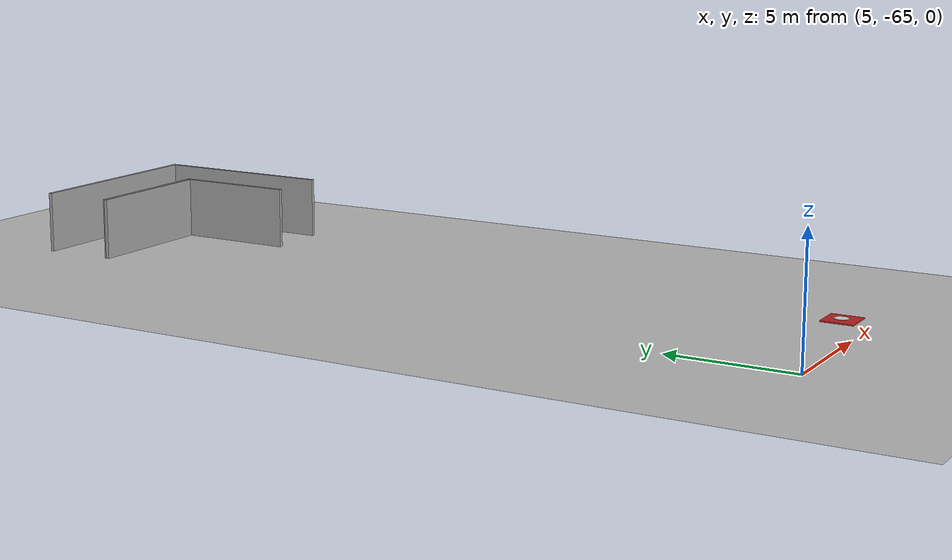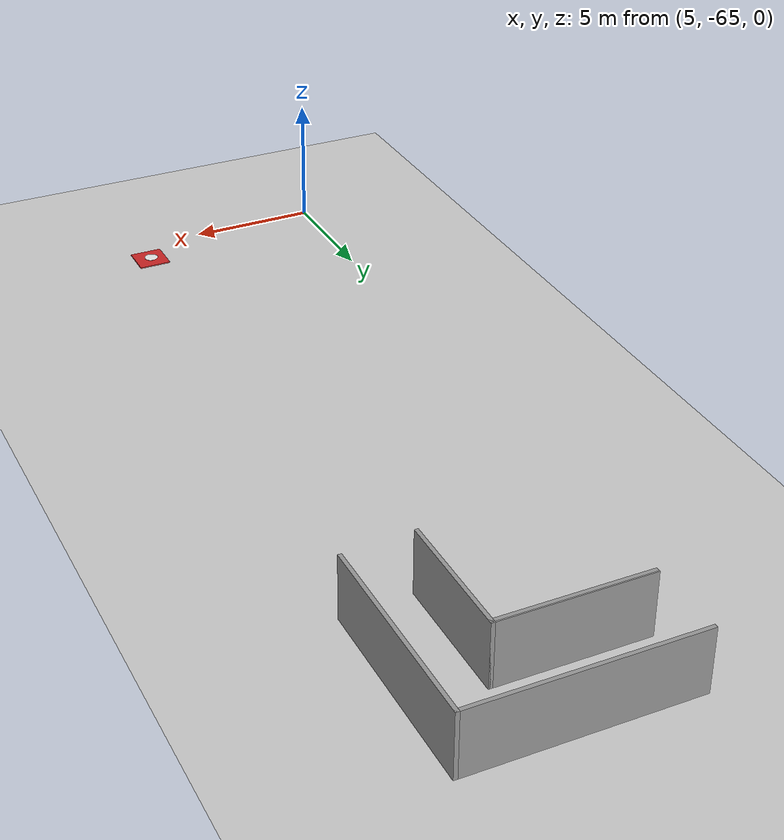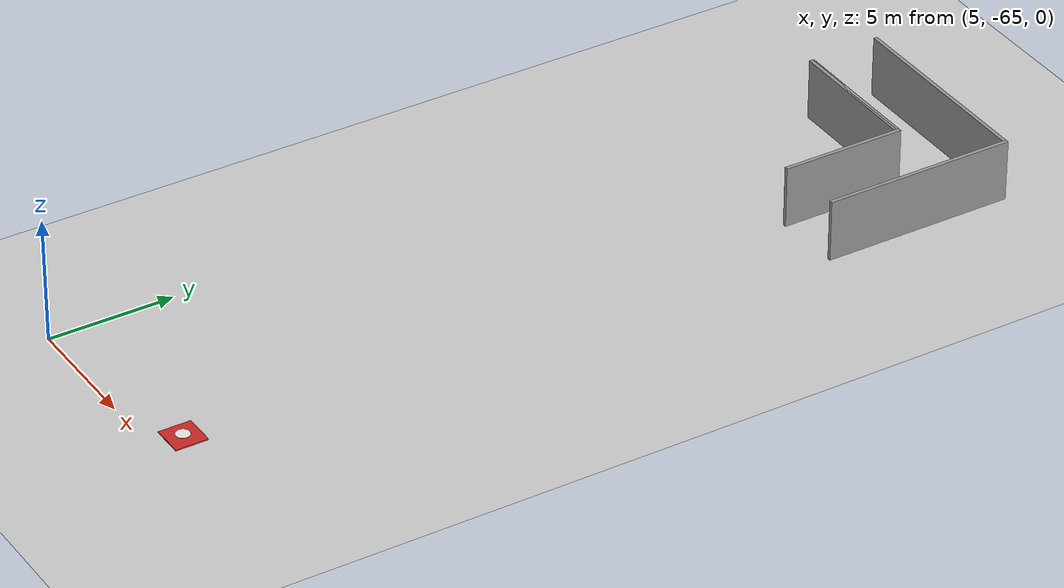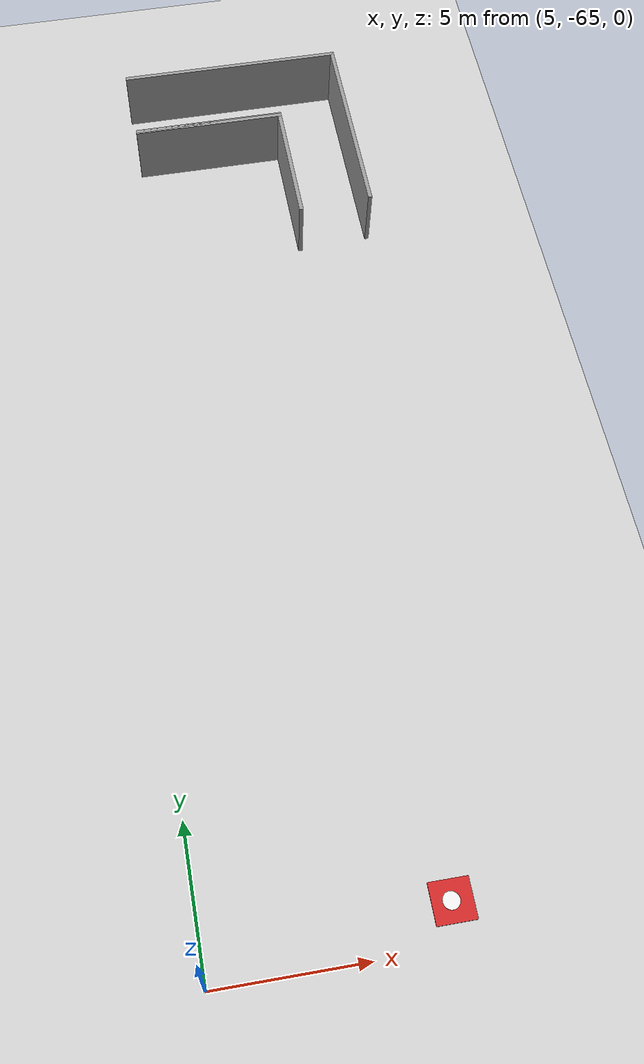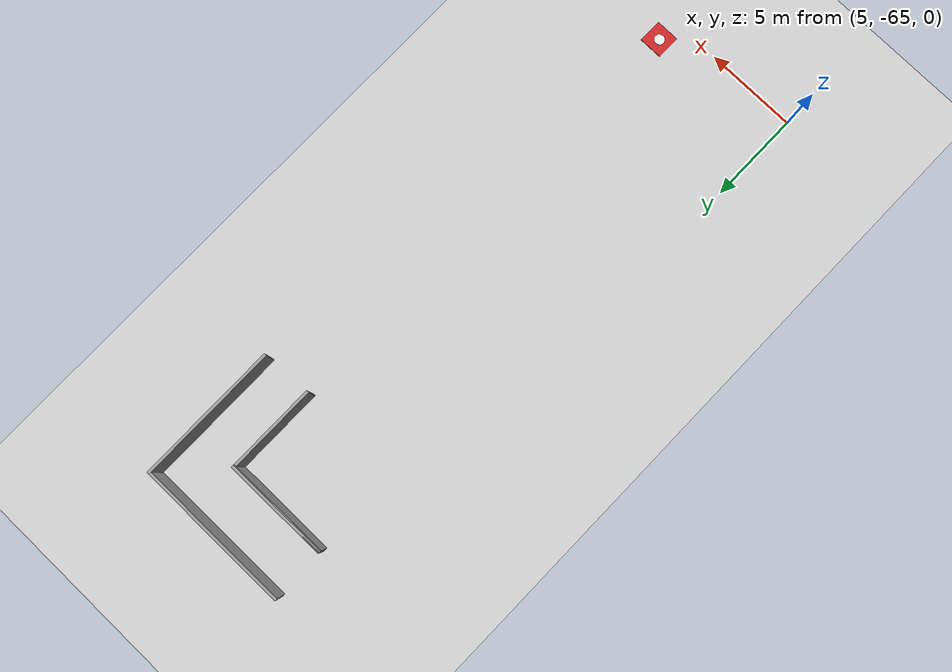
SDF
<sdf version="1.7">
 <world name="default">
  <model name="ground_plane">
   <static>1</static>
   <link name="link">
    <collision name="collision">
     <geometry><plane><normal>0 0 1</normal><size>5000 5000</size></plane></geometry>
     <surface><friction><ode><mu>100</mu><mu2>50</mu2></ode></friction></surface>
    </collision>
    <visual name="runway">
     <pose>0 0 0.005 0 -0 0</pose>
     <cast_shadows>0</cast_shadows>
     <geometry><plane><normal>0 0 1</normal><size>1829 45</size></plane></geometry>
     <material>
      <script><uri>file://media/materials/scripts/gazebo.material</uri><name>Gazebo/Runway</name></script>
     </material>
    </visual>
    <visual name="grass">
     <pose>0 0 -0.1 0 -0 0</pose>
     <cast_shadows>0</cast_shadows>
     <geometry><plane><normal>0 0 1</normal><size>5000 5000</size></plane></geometry>
     <material>
      <script><uri>file://media/materials/scripts/gazebo.material</uri><name>Gazebo/Grass</name></script>
     </material>
    </visual>
   </link>
  </model>
  <model name="KRTI_GREY">
   <link name="Wall_0">
    <pose>-0.538702 0.926094 0 0 -0 3.14159</pose>
    <inertial>
     <mass>1</mass>
     <inertia><ixx>1</ixx><ixy>0</ixy><ixz>0</ixz><iyy>1</iyy><iyz>0</iyz><izz>1</izz></inertia>
    </inertial>
    <visual name="Wall_0_Visual">
     <pose>0 0 1.25 0 -0 0</pose>
     <geometry><box><size>5.75 0.15 2.5</size></box></geometry>
     <material>
      <script><uri>file://media/materials/scripts/gazebo.material</uri><name>Gazebo/Grey</name></script>
      <ambient>1 1 1 1</ambient>
      <shader type="pixel"><normal_map>__default__</normal_map></shader>
      <diffuse>0.7 0.7 0.7 1</diffuse>
      <specular>0.01 0.01 0.01 1</specular>
      <emissive>0 0 0 1</emissive>
     </material>
     <meta><layer>0</layer></meta>
    </visual>
    <collision name="Wall_0_Collision">
     <pose>0 0 1.25 0 -0 0</pose>
     <geometry><box><size>5.75 0.15 2.5</size></box></geometry>
     <surface>
      <friction>
       <ode><mu>1</mu><mu2>1</mu2><fdir1>0 0 0</fdir1><slip1>0</slip1><slip2>0</slip2></ode>
       <torsional>
        <coefficient>1</coefficient>
        <patch_radius>0</patch_radius>
        <surface_radius>0</surface_radius>
        <use_patch_radius>1</use_patch_radius>
        <ode><slip>0</slip></ode>
       </torsional>
      </friction>
      <bounce><restitution_coefficient>0</restitution_coefficient><threshold>1e+06</threshold></bounce>
      <contact>
       <collide_without_contact>0</collide_without_contact>
       <collide_without_contact_bitmask>1</collide_without_contact_bitmask>
       <collide_bitmask>1</collide_bitmask>
       <ode>
        <soft_cfm>0</soft_cfm>
        <soft_erp>0.2</soft_erp>
        <kp>1e+13</kp>
        <kd>1</kd>
        <max_vel>0.01</max_vel>
        <min_depth>0</min_depth>
       </ode>
       <bullet>
        <split_impulse>1</split_impulse>
        <split_impulse_penetration_threshold>-0.01</split_impulse_penetration_threshold>
        <soft_cfm>0</soft_cfm>
        <soft_erp>0.2</soft_erp>
        <kp>1e+13</kp>
        <kd>1</kd>
       </bullet>
      </contact>
     </surface>
    </collision>
   </link>
   <link name="Wall_1">
    <pose>-0.538702 0.972618 0 0 -0 0</pose>
    <inertial>
     <mass>1</mass>
     <inertia><ixx>1</ixx><ixy>0</ixy><ixz>0</ixz><iyy>1</iyy><iyz>0</iyz><izz>1</izz></inertia>
    </inertial>
    <visual name="Wall_1_Visual">
     <pose>0 0 1.25 0 -0 0</pose>
     <geometry><box><size>5.75 0.15 2.5</size></box></geometry>
     <material>
      <script><uri>file://media/materials/scripts/gazebo.material</uri><name>Gazebo/Grey</name></script>
      <ambient>1 1 1 1</ambient>
      <shader type="pixel"><normal_map>__default__</normal_map></shader>
      <diffuse>0.7 0.7 0.7 1</diffuse>
      <specular>0.01 0.01 0.01 1</specular>
      <emissive>0 0 0 1</emissive>
     </material>
     <meta><layer>0</layer></meta>
    </visual>
    <collision name="Wall_1_Collision">
     <pose>0 0 1.25 0 -0 0</pose>
     <geometry><box><size>5.75 0.15 2.5</size></box></geometry>
     <surface>
      <friction>
       <ode><mu>1</mu><mu2>1</mu2><fdir1>0 0 0</fdir1><slip1>0</slip1><slip2>0</slip2></ode>
       <torsional>
        <coefficient>1</coefficient>
        <patch_radius>0</patch_radius>
        <surface_radius>0</surface_radius>
        <use_patch_radius>1</use_patch_radius>
        <ode><slip>0</slip></ode>
       </torsional>
      </friction>
      <bounce><restitution_coefficient>0</restitution_coefficient><threshold>1e+06</threshold></bounce>
      <contact>
       <collide_without_contact>0</collide_without_contact>
       <collide_without_contact_bitmask>1</collide_without_contact_bitmask>
       <collide_bitmask>1</collide_bitmask>
       <ode>
        <soft_cfm>0</soft_cfm>
        <soft_erp>0.2</soft_erp>
        <kp>1e+13</kp>
        <kd>1</kd>
        <max_vel>0.01</max_vel>
        <min_depth>0</min_depth>
       </ode>
       <bullet>
        <split_impulse>1</split_impulse>
        <split_impulse_penetration_threshold>-0.01</split_impulse_penetration_threshold>
        <soft_cfm>0</soft_cfm>
        <soft_erp>0.2</soft_erp>
        <kp>1e+13</kp>
        <kd>1</kd>
       </bullet>
      </contact>
     </surface>
    </collision>
   </link>
   <link name="Wall_4">
    <pose>0.760736 3.87738 0 0 -0 0</pose>
    <inertial>
     <mass>1</mass>
     <inertia><ixx>1</ixx><ixy>0</ixy><ixz>0</ixz><iyy>1</iyy><iyz>0</iyz><izz>1</izz></inertia>
    </inertial>
    <visual name="Wall_4_Visual">
     <pose>0 0 1.25 0 -0 0</pose>
     <geometry><box><size>8.5 0.15 2.5</size></box></geometry>
     <material>
      <script><uri>file://media/materials/scripts/gazebo.material</uri><name>Gazebo/Grey</name></script>
      <ambient>1 1 1 1</ambient>
      <shader type="pixel"><normal_map>__default__</normal_map></shader>
      <diffuse>1 1 1 1</diffuse>
      <specular>0.2 0.2 0.2 1</specular>
      <emissive>0 0 0 1</emissive>
     </material>
     <meta><layer>0</layer></meta>
    </visual>
    <collision name="Wall_4_Collision">
     <pose>0 0 1.25 0 -0 0</pose>
     <geometry><box><size>8.5 0.15 2.5</size></box></geometry>
     <surface>
      <friction>
       <ode><mu>1</mu><mu2>1</mu2><fdir1>0 0 0</fdir1><slip1>0</slip1><slip2>0</slip2></ode>
       <torsional>
        <coefficient>1</coefficient>
        <patch_radius>0</patch_radius>
        <surface_radius>0</surface_radius>
        <use_patch_radius>1</use_patch_radius>
        <ode><slip>0</slip></ode>
       </torsional>
      </friction>
      <bounce><restitution_coefficient>0</restitution_coefficient><threshold>1e+06</threshold></bounce>
      <contact>
       <collide_without_contact>0</collide_without_contact>
       <collide_without_contact_bitmask>1</collide_without_contact_bitmask>
       <collide_bitmask>1</collide_bitmask>
       <ode>
        <soft_cfm>0</soft_cfm>
        <soft_erp>0.2</soft_erp>
        <kp>1e+13</kp>
        <kd>1</kd>
        <max_vel>0.01</max_vel>
        <min_depth>0</min_depth>
       </ode>
       <bullet>
        <split_impulse>1</split_impulse>
        <split_impulse_penetration_threshold>-0.01</split_impulse_penetration_threshold>
        <soft_cfm>0</soft_cfm>
        <soft_erp>0.2</soft_erp>
        <kp>1e+13</kp>
        <kd>1</kd>
       </bullet>
      </contact>
     </surface>
    </collision>
   </link>
   <link name="Wall_7">
    <pose>4.93574 0.077381 0 0 0 -1.5708</pose>
    <inertial>
     <mass>1</mass>
     <inertia><ixx>1</ixx><ixy>0</ixy><ixz>0</ixz><iyy>1</iyy><iyz>0</iyz><izz>1</izz></inertia>
    </inertial>
    <visual name="Wall_7_Visual">
     <pose>0 0 1.25 0 -0 0</pose>
     <geometry><box><size>7.75 0.15 2.5</size></box></geometry>
     <material>
      <script><uri>file://media/materials/scripts/gazebo.material</uri><name>Gazebo/Grey</name></script>
      <ambient>1 1 1 1</ambient>
      <shader type="pixel"><normal_map>__default__</normal_map></shader>
      <diffuse>0.7 0.7 0.7 1</diffuse>
      <specular>0.01 0.01 0.01 1</specular>
      <emissive>0 0 0 1</emissive>
     </material>
     <meta><layer>0</layer></meta>
    </visual>
    <collision name="Wall_7_Collision">
     <pose>0 0 1.25 0 -0 0</pose>
     <geometry><box><size>7.75 0.15 2.5</size></box></geometry>
     <surface>
      <friction>
       <ode><mu>1</mu><mu2>1</mu2><fdir1>0 0 0</fdir1><slip1>0</slip1><slip2>0</slip2></ode>
       <torsional>
        <coefficient>1</coefficient>
        <patch_radius>0</patch_radius>
        <surface_radius>0</surface_radius>
        <use_patch_radius>1</use_patch_radius>
        <ode><slip>0</slip></ode>
       </torsional>
      </friction>
      <bounce><restitution_coefficient>0</restitution_coefficient><threshold>1e+06</threshold></bounce>
      <contact>
       <collide_without_contact>0</collide_without_contact>
       <collide_without_contact_bitmask>1</collide_without_contact_bitmask>
       <collide_bitmask>1</collide_bitmask>
       <ode>
        <soft_cfm>0</soft_cfm>
        <soft_erp>0.2</soft_erp>
        <kp>1e+13</kp>
        <kd>1</kd>
        <max_vel>0.01</max_vel>
        <min_depth>0</min_depth>
       </ode>
       <bullet>
        <split_impulse>1</split_impulse>
        <split_impulse_penetration_threshold>-0.01</split_impulse_penetration_threshold>
        <soft_cfm>0</soft_cfm>
        <soft_erp>0.2</soft_erp>
        <kp>1e+13</kp>
        <kd>1</kd>
       </bullet>
      </contact>
     </surface>
    </collision>
   </link>
   <link name="Wall_9">
    <pose>2.2613 -1.45238 0 0 0 -1.5708</pose>
    <inertial>
     <mass>1</mass>
     <inertia><ixx>1</ixx><ixy>0</ixy><ixz>0</ixz><iyy>1</iyy><iyz>0</iyz><izz>1</izz></inertia>
    </inertial>
    <visual name="Wall_9_Visual">
     <pose>0 0 1.25 0 -0 0</pose>
     <geometry><box><size>5 0.15 2.5</size></box></geometry>
     <material>
      <script><uri>file://media/materials/scripts/gazebo.material</uri><name>Gazebo/Grey</name></script>
      <ambient>1 1 1 1</ambient>
      <shader type="pixel"><normal_map>__default__</normal_map></shader>
      <diffuse>0.7 0.7 0.7 1</diffuse>
      <specular>0.01 0.01 0.01 1</specular>
      <emissive>0 0 0 1</emissive>
     </material>
     <meta><layer>0</layer></meta>
    </visual>
    <collision name="Wall_9_Collision">
     <pose>0 0 1.25 0 -0 0</pose>
     <geometry><box><size>5 0.15 2.5</size></box></geometry>
     <surface>
      <friction>
       <ode><mu>1</mu><mu2>1</mu2><fdir1>0 0 0</fdir1><slip1>0</slip1><slip2>0</slip2></ode>
       <torsional>
        <coefficient>1</coefficient>
        <patch_radius>0</patch_radius>
        <surface_radius>0</surface_radius>
        <use_patch_radius>1</use_patch_radius>
        <ode><slip>0</slip></ode>
       </torsional>
      </friction>
      <bounce><restitution_coefficient>0</restitution_coefficient><threshold>1e+06</threshold></bounce>
      <contact>
       <collide_without_contact>0</collide_without_contact>
       <collide_without_contact_bitmask>1</collide_without_contact_bitmask>
       <collide_bitmask>1</collide_bitmask>
       <ode>
        <soft_cfm>0</soft_cfm>
        <soft_erp>0.2</soft_erp>
        <kp>1e+13</kp>
        <kd>1</kd>
        <max_vel>0.01</max_vel>
        <min_depth>0</min_depth>
       </ode>
       <bullet>
        <split_impulse>1</split_impulse>
        <split_impulse_penetration_threshold>-0.01</split_impulse_penetration_threshold>
        <soft_cfm>0</soft_cfm>
        <soft_erp>0.2</soft_erp>
        <kp>1e+13</kp>
        <kd>1</kd>
       </bullet>
      </contact>
     </surface>
    </collision>
   </link>
   <static>1</static>
   <pose>10.2701 -34.8145 0 0 -0 0</pose>
  </model>
  <model name="Dropping">
   <link name="link">
    <inertial>
     <mass>1</mass>
     <inertia>
      <ixx>0.166667</ixx>
      <ixy>0</ixy>
      <ixz>0</ixz>
      <iyy>0.166667</iyy>
      <iyz>0</iyz>
      <izz>0.166667</izz>
     </inertia>
    </inertial>
    <visual name="visual">
     <geometry><box><size>1.28575 1.28981 0.043486</size></box></geometry>
     <material>
      <script><name>Gazebo/Red</name><uri>file://media/materials/scripts/gazebo.material</uri></script>
      <shader type="pixel"><normal_map>__default__</normal_map></shader>
      <ambient>1 0 0 1</ambient>
      <diffuse>1 0 0 1</diffuse>
      <specular>0.1 0.1 0.1 1</specular>
      <emissive>0 0 0 1</emissive>
     </material>
    </visual>
    <collision name="collision">
     <geometry><box><size>1.28575 1.28981 0.043486</size></box></geometry>
     <surface>
      <friction>
       <ode><mu>1</mu><mu2>1</mu2><fdir1>0 0 0</fdir1><slip1>0</slip1><slip2>0</slip2></ode>
       <torsional>
        <coefficient>1</coefficient>
        <patch_radius>0</patch_radius>
        <surface_radius>0</surface_radius>
        <use_patch_radius>1</use_patch_radius>
        <ode><slip>0</slip></ode>
       </torsional>
      </friction>
      <bounce><restitution_coefficient>0</restitution_coefficient><threshold>1e+06</threshold></bounce>
      <contact>
       <collide_without_contact>0</collide_without_contact>
       <collide_without_contact_bitmask>1</collide_without_contact_bitmask>
       <collide_bitmask>1</collide_bitmask>
       <ode>
        <soft_cfm>0</soft_cfm>
        <soft_erp>0.2</soft_erp>
        <kp>1e+13</kp>
        <kd>1</kd>
        <max_vel>0.01</max_vel>
        <min_depth>0</min_depth>
       </ode>
       <bullet>
        <split_impulse>1</split_impulse>
        <split_impulse_penetration_threshold>-0.01</split_impulse_penetration_threshold>
        <soft_cfm>0</soft_cfm>
        <soft_erp>0.2</soft_erp>
        <kp>1e+13</kp>
        <kd>1</kd>
       </bullet>
      </contact>
     </surface>
    </collision>
   </link>
   <static>0</static>
   <pose>12.6506 -63.7251 0.021743 0 0 -8.1e-05</pose>
  </model>
  <model name="Dropping_white">
   <link name="link">
    <inertial>
     <mass>1</mass>
     <inertia><ixx>0.145833</ixx><ixy>0</ixy><ixz>0</ixz><iyy>0.145833</iyy><iyz>0</iyz><izz>0.125</izz></inertia>
    </inertial>
    <visual name="visual">
     <geometry><cylinder><radius>0.276599</radius><length>0.00742246</length></cylinder></geometry>
     <material>
      <script><name>Gazebo/White</name><uri>file://media/materials/scripts/gazebo.material</uri></script>
      <shader type="pixel"><normal_map>__default__</normal_map></shader>
      <ambient>1 1 1 1</ambient>
      <diffuse>1 1 1 1</diffuse>
      <specular>0 0 0 1</specular>
      <emissive>0 0 0 1</emissive>
     </material>
    </visual>
    <collision name="collision">
     <geometry><cylinder><radius>0.276599</radius><length>0.007422</length></cylinder></geometry>
     <surface>
      <friction>
       <ode><mu>1</mu><mu2>1</mu2><fdir1>0 0 0</fdir1><slip1>0</slip1><slip2>0</slip2></ode>
       <torsional>
        <coefficient>1</coefficient>
        <patch_radius>0</patch_radius>
        <surface_radius>0</surface_radius>
        <use_patch_radius>1</use_patch_radius>
        <ode><slip>0</slip></ode>
       </torsional>
      </friction>
      <bounce><restitution_coefficient>0</restitution_coefficient><threshold>1e+06</threshold></bounce>
      <contact>
       <collide_without_contact>0</collide_without_contact>
       <collide_without_contact_bitmask>1</collide_without_contact_bitmask>
       <collide_bitmask>1</collide_bitmask>
       <ode>
        <soft_cfm>0</soft_cfm>
        <soft_erp>0.2</soft_erp>
        <kp>1e+13</kp>
        <kd>1</kd>
        <max_vel>0.01</max_vel>
        <min_depth>0</min_depth>
       </ode>
       <bullet>
        <split_impulse>1</split_impulse>
        <split_impulse_penetration_threshold>-0.01</split_impulse_penetration_threshold>
        <soft_cfm>0</soft_cfm>
        <soft_erp>0.2</soft_erp>
        <kp>1e+13</kp>
        <kd>1</kd>
       </bullet>
      </contact>
     </surface>
    </collision>
   </link>
   <static>0</static>
   <pose>12.6138 -63.7178 0.083852 0 -0 0</pose>
  </model>
 </world>
</sdf>
